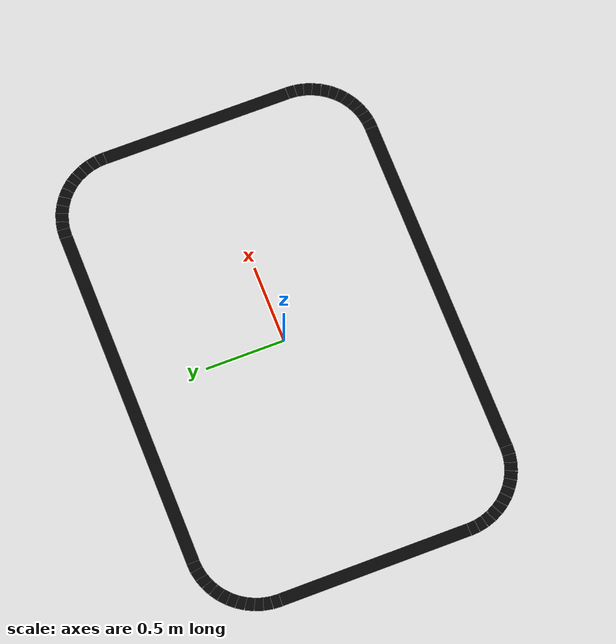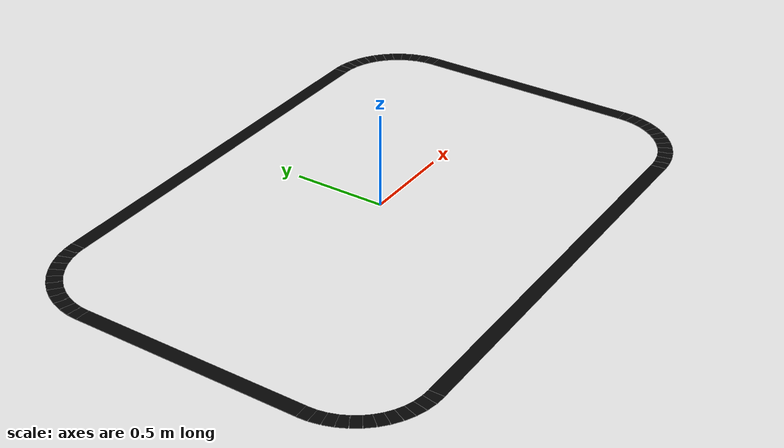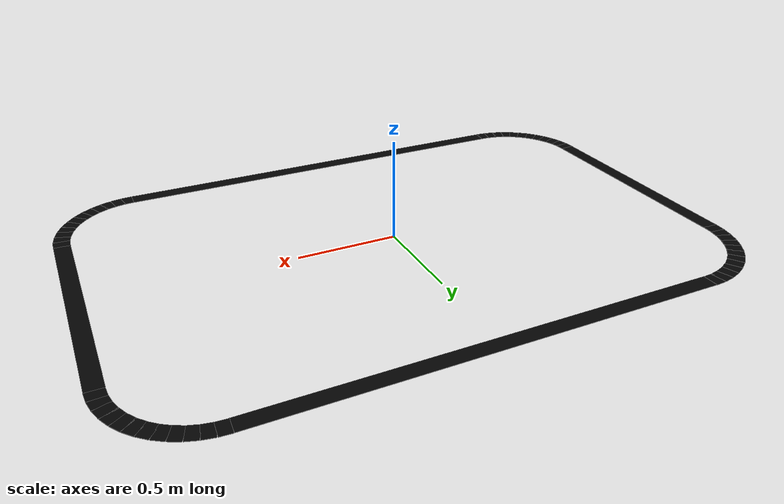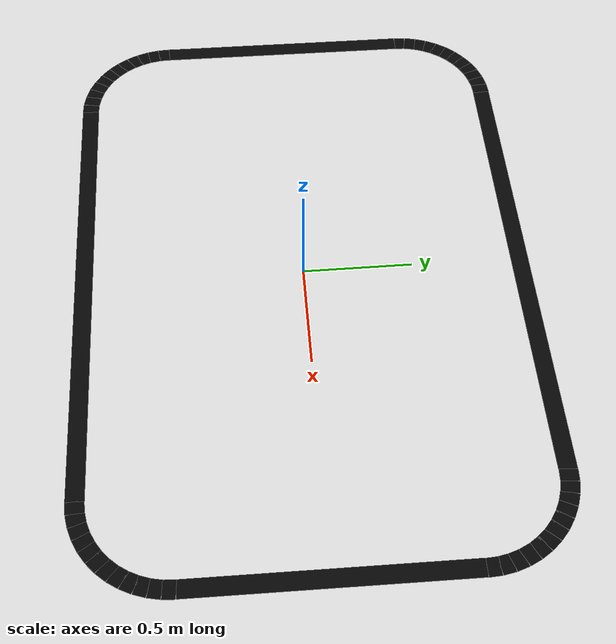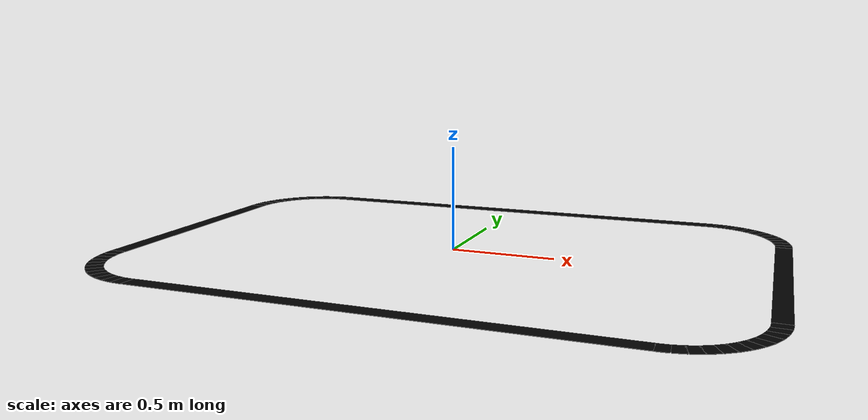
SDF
<?xml version="1.0"?>
<sdf version="1.8">
  <!-- Auto-generated by scripts/generate_line_track.py. Hand edits will be
       lost on regeneration; tune the constants at the top of the script
       and re-run instead. -->
  <model name="line_track">
    <static>true</static>
    <link name="track">
      <visual name='straight_top'>
        <pose>0.000000 1.000000 0.001000 0.000000 0.000000 0.000000</pose>
        <geometry>
          <box>
            <size>2.200000 0.080000 0.002000</size>
          </box>
        </geometry>
      <material>
        <ambient>0.02 0.02 0.02 1</ambient>
        <diffuse>0.02 0.02 0.02 1</diffuse>
        <specular>0.0 0.0 0.0 1</specular>
      </material>
      </visual>
      <visual name='straight_bottom'>
        <pose>0.000000 -1.000000 0.001000 0.000000 0.000000 0.000000</pose>
        <geometry>
          <box>
            <size>2.200000 0.080000 0.002000</size>
          </box>
        </geometry>
      <material>
        <ambient>0.02 0.02 0.02 1</ambient>
        <diffuse>0.02 0.02 0.02 1</diffuse>
        <specular>0.0 0.0 0.0 1</specular>
      </material>
      </visual>
      <visual name='straight_right'>
        <pose>1.500000 0.000000 0.001000 0.000000 0.000000 0.000000</pose>
        <geometry>
          <box>
            <size>0.080000 1.200000 0.002000</size>
          </box>
        </geometry>
      <material>
        <ambient>0.02 0.02 0.02 1</ambient>
        <diffuse>0.02 0.02 0.02 1</diffuse>
        <specular>0.0 0.0 0.0 1</specular>
      </material>
      </visual>
      <visual name='straight_left'>
        <pose>-1.500000 0.000000 0.001000 0.000000 0.000000 0.000000</pose>
        <geometry>
          <box>
            <size>0.080000 1.200000 0.002000</size>
          </box>
        </geometry>
      <material>
        <ambient>0.02 0.02 0.02 1</ambient>
        <diffuse>0.02 0.02 0.02 1</diffuse>
        <specular>0.0 0.0 0.0 1</specular>
      </material>
      </visual>
      <visual name='corner_tr_00'>
        <pose>1.499144 0.626161 0.001000 0.000000 0.000000 1.636246</pose>
        <geometry>
          <box>
            <size>0.054978 0.080000 0.002000</size>
          </box>
        </geometry>
      <material>
        <ambient>0.02 0.02 0.02 1</ambient>
        <diffuse>0.02 0.02 0.02 1</diffuse>
        <specular>0.0 0.0 0.0 1</specular>
      </material>
      </visual>
      <visual name='corner_tr_01'>
        <pose>1.492314 0.678036 0.001000 0.000000 0.000000 1.767146</pose>
        <geometry>
          <box>
            <size>0.054978 0.080000 0.002000</size>
          </box>
        </geometry>
      <material>
        <ambient>0.02 0.02 0.02 1</ambient>
        <diffuse>0.02 0.02 0.02 1</diffuse>
        <specular>0.0 0.0 0.0 1</specular>
      </material>
      </visual>
      <visual name='corner_tr_02'>
        <pose>1.478772 0.728576 0.001000 0.000000 0.000000 1.898046</pose>
        <geometry>
          <box>
            <size>0.054978 0.080000 0.002000</size>
          </box>
        </geometry>
      <material>
        <ambient>0.02 0.02 0.02 1</ambient>
        <diffuse>0.02 0.02 0.02 1</diffuse>
        <specular>0.0 0.0 0.0 1</specular>
      </material>
      </visual>
      <visual name='corner_tr_03'>
        <pose>1.458749 0.776915 0.001000 0.000000 0.000000 2.028945</pose>
        <geometry>
          <box>
            <size>0.054978 0.080000 0.002000</size>
          </box>
        </geometry>
      <material>
        <ambient>0.02 0.02 0.02 1</ambient>
        <diffuse>0.02 0.02 0.02 1</diffuse>
        <specular>0.0 0.0 0.0 1</specular>
      </material>
      </visual>
      <visual name='corner_tr_04'>
        <pose>1.432588 0.822228 0.001000 0.000000 0.000000 2.159845</pose>
        <geometry>
          <box>
            <size>0.054978 0.080000 0.002000</size>
          </box>
        </geometry>
      <material>
        <ambient>0.02 0.02 0.02 1</ambient>
        <diffuse>0.02 0.02 0.02 1</diffuse>
        <specular>0.0 0.0 0.0 1</specular>
      </material>
      </visual>
      <visual name='corner_tr_05'>
        <pose>1.400736 0.863738 0.001000 0.000000 0.000000 2.290745</pose>
        <geometry>
          <box>
            <size>0.054978 0.080000 0.002000</size>
          </box>
        </geometry>
      <material>
        <ambient>0.02 0.02 0.02 1</ambient>
        <diffuse>0.02 0.02 0.02 1</diffuse>
        <specular>0.0 0.0 0.0 1</specular>
      </material>
      </visual>
      <visual name='corner_tr_06'>
        <pose>1.363738 0.900736 0.001000 0.000000 0.000000 2.421644</pose>
        <geometry>
          <box>
            <size>0.054978 0.080000 0.002000</size>
          </box>
        </geometry>
      <material>
        <ambient>0.02 0.02 0.02 1</ambient>
        <diffuse>0.02 0.02 0.02 1</diffuse>
        <specular>0.0 0.0 0.0 1</specular>
      </material>
      </visual>
      <visual name='corner_tr_07'>
        <pose>1.322228 0.932588 0.001000 0.000000 0.000000 2.552544</pose>
        <geometry>
          <box>
            <size>0.054978 0.080000 0.002000</size>
          </box>
        </geometry>
      <material>
        <ambient>0.02 0.02 0.02 1</ambient>
        <diffuse>0.02 0.02 0.02 1</diffuse>
        <specular>0.0 0.0 0.0 1</specular>
      </material>
      </visual>
      <visual name='corner_tr_08'>
        <pose>1.276915 0.958749 0.001000 0.000000 0.000000 2.683444</pose>
        <geometry>
          <box>
            <size>0.054978 0.080000 0.002000</size>
          </box>
        </geometry>
      <material>
        <ambient>0.02 0.02 0.02 1</ambient>
        <diffuse>0.02 0.02 0.02 1</diffuse>
        <specular>0.0 0.0 0.0 1</specular>
      </material>
      </visual>
      <visual name='corner_tr_09'>
        <pose>1.228576 0.978772 0.001000 0.000000 0.000000 2.814343</pose>
        <geometry>
          <box>
            <size>0.054978 0.080000 0.002000</size>
          </box>
        </geometry>
      <material>
        <ambient>0.02 0.02 0.02 1</ambient>
        <diffuse>0.02 0.02 0.02 1</diffuse>
        <specular>0.0 0.0 0.0 1</specular>
      </material>
      </visual>
      <visual name='corner_tr_10'>
        <pose>1.178036 0.992314 0.001000 0.000000 0.000000 2.945243</pose>
        <geometry>
          <box>
            <size>0.054978 0.080000 0.002000</size>
          </box>
        </geometry>
      <material>
        <ambient>0.02 0.02 0.02 1</ambient>
        <diffuse>0.02 0.02 0.02 1</diffuse>
        <specular>0.0 0.0 0.0 1</specular>
      </material>
      </visual>
      <visual name='corner_tr_11'>
        <pose>1.126161 0.999144 0.001000 0.000000 0.000000 3.076143</pose>
        <geometry>
          <box>
            <size>0.054978 0.080000 0.002000</size>
          </box>
        </geometry>
      <material>
        <ambient>0.02 0.02 0.02 1</ambient>
        <diffuse>0.02 0.02 0.02 1</diffuse>
        <specular>0.0 0.0 0.0 1</specular>
      </material>
      </visual>
      <visual name='corner_tl_00'>
        <pose>-1.126161 0.999144 0.001000 0.000000 0.000000 3.207043</pose>
        <geometry>
          <box>
            <size>0.054978 0.080000 0.002000</size>
          </box>
        </geometry>
      <material>
        <ambient>0.02 0.02 0.02 1</ambient>
        <diffuse>0.02 0.02 0.02 1</diffuse>
        <specular>0.0 0.0 0.0 1</specular>
      </material>
      </visual>
      <visual name='corner_tl_01'>
        <pose>-1.178036 0.992314 0.001000 0.000000 0.000000 3.337942</pose>
        <geometry>
          <box>
            <size>0.054978 0.080000 0.002000</size>
          </box>
        </geometry>
      <material>
        <ambient>0.02 0.02 0.02 1</ambient>
        <diffuse>0.02 0.02 0.02 1</diffuse>
        <specular>0.0 0.0 0.0 1</specular>
      </material>
      </visual>
      <visual name='corner_tl_02'>
        <pose>-1.228576 0.978772 0.001000 0.000000 0.000000 3.468842</pose>
        <geometry>
          <box>
            <size>0.054978 0.080000 0.002000</size>
          </box>
        </geometry>
      <material>
        <ambient>0.02 0.02 0.02 1</ambient>
        <diffuse>0.02 0.02 0.02 1</diffuse>
        <specular>0.0 0.0 0.0 1</specular>
      </material>
      </visual>
      <visual name='corner_tl_03'>
        <pose>-1.276915 0.958749 0.001000 0.000000 0.000000 3.599742</pose>
        <geometry>
          <box>
            <size>0.054978 0.080000 0.002000</size>
          </box>
        </geometry>
      <material>
        <ambient>0.02 0.02 0.02 1</ambient>
        <diffuse>0.02 0.02 0.02 1</diffuse>
        <specular>0.0 0.0 0.0 1</specular>
      </material>
      </visual>
      <visual name='corner_tl_04'>
        <pose>-1.322228 0.932588 0.001000 0.000000 0.000000 3.730641</pose>
        <geometry>
          <box>
            <size>0.054978 0.080000 0.002000</size>
          </box>
        </geometry>
      <material>
        <ambient>0.02 0.02 0.02 1</ambient>
        <diffuse>0.02 0.02 0.02 1</diffuse>
        <specular>0.0 0.0 0.0 1</specular>
      </material>
      </visual>
      <visual name='corner_tl_05'>
        <pose>-1.363738 0.900736 0.001000 0.000000 0.000000 3.861541</pose>
        <geometry>
          <box>
            <size>0.054978 0.080000 0.002000</size>
          </box>
        </geometry>
      <material>
        <ambient>0.02 0.02 0.02 1</ambient>
        <diffuse>0.02 0.02 0.02 1</diffuse>
        <specular>0.0 0.0 0.0 1</specular>
      </material>
      </visual>
      <visual name='corner_tl_06'>
        <pose>-1.400736 0.863738 0.001000 0.000000 0.000000 3.992441</pose>
        <geometry>
          <box>
            <size>0.054978 0.080000 0.002000</size>
          </box>
        </geometry>
      <material>
        <ambient>0.02 0.02 0.02 1</ambient>
        <diffuse>0.02 0.02 0.02 1</diffuse>
        <specular>0.0 0.0 0.0 1</specular>
      </material>
      </visual>
      <visual name='corner_tl_07'>
        <pose>-1.432588 0.822228 0.001000 0.000000 0.000000 4.123340</pose>
        <geometry>
          <box>
            <size>0.054978 0.080000 0.002000</size>
          </box>
        </geometry>
      <material>
        <ambient>0.02 0.02 0.02 1</ambient>
        <diffuse>0.02 0.02 0.02 1</diffuse>
        <specular>0.0 0.0 0.0 1</specular>
      </material>
      </visual>
      <visual name='corner_tl_08'>
        <pose>-1.458749 0.776915 0.001000 0.000000 0.000000 4.254240</pose>
        <geometry>
          <box>
            <size>0.054978 0.080000 0.002000</size>
          </box>
        </geometry>
      <material>
        <ambient>0.02 0.02 0.02 1</ambient>
        <diffuse>0.02 0.02 0.02 1</diffuse>
        <specular>0.0 0.0 0.0 1</specular>
      </material>
      </visual>
      <visual name='corner_tl_09'>
        <pose>-1.478772 0.728576 0.001000 0.000000 0.000000 4.385140</pose>
        <geometry>
          <box>
            <size>0.054978 0.080000 0.002000</size>
          </box>
        </geometry>
      <material>
        <ambient>0.02 0.02 0.02 1</ambient>
        <diffuse>0.02 0.02 0.02 1</diffuse>
        <specular>0.0 0.0 0.0 1</specular>
      </material>
      </visual>
      <visual name='corner_tl_10'>
        <pose>-1.492314 0.678036 0.001000 0.000000 0.000000 4.516039</pose>
        <geometry>
          <box>
            <size>0.054978 0.080000 0.002000</size>
          </box>
        </geometry>
      <material>
        <ambient>0.02 0.02 0.02 1</ambient>
        <diffuse>0.02 0.02 0.02 1</diffuse>
        <specular>0.0 0.0 0.0 1</specular>
      </material>
      </visual>
      <visual name='corner_tl_11'>
        <pose>-1.499144 0.626161 0.001000 0.000000 0.000000 4.646939</pose>
        <geometry>
          <box>
            <size>0.054978 0.080000 0.002000</size>
          </box>
        </geometry>
      <material>
        <ambient>0.02 0.02 0.02 1</ambient>
        <diffuse>0.02 0.02 0.02 1</diffuse>
        <specular>0.0 0.0 0.0 1</specular>
      </material>
      </visual>
      <visual name='corner_bl_00'>
        <pose>-1.499144 -0.626161 0.001000 0.000000 0.000000 4.777839</pose>
        <geometry>
          <box>
            <size>0.054978 0.080000 0.002000</size>
          </box>
        </geometry>
      <material>
        <ambient>0.02 0.02 0.02 1</ambient>
        <diffuse>0.02 0.02 0.02 1</diffuse>
        <specular>0.0 0.0 0.0 1</specular>
      </material>
      </visual>
      <visual name='corner_bl_01'>
        <pose>-1.492314 -0.678036 0.001000 0.000000 0.000000 4.908739</pose>
        <geometry>
          <box>
            <size>0.054978 0.080000 0.002000</size>
          </box>
        </geometry>
      <material>
        <ambient>0.02 0.02 0.02 1</ambient>
        <diffuse>0.02 0.02 0.02 1</diffuse>
        <specular>0.0 0.0 0.0 1</specular>
      </material>
      </visual>
      <visual name='corner_bl_02'>
        <pose>-1.478772 -0.728576 0.001000 0.000000 0.000000 5.039638</pose>
        <geometry>
          <box>
            <size>0.054978 0.080000 0.002000</size>
          </box>
        </geometry>
      <material>
        <ambient>0.02 0.02 0.02 1</ambient>
        <diffuse>0.02 0.02 0.02 1</diffuse>
        <specular>0.0 0.0 0.0 1</specular>
      </material>
      </visual>
      <visual name='corner_bl_03'>
        <pose>-1.458749 -0.776915 0.001000 0.000000 0.000000 5.170538</pose>
        <geometry>
          <box>
            <size>0.054978 0.080000 0.002000</size>
          </box>
        </geometry>
      <material>
        <ambient>0.02 0.02 0.02 1</ambient>
        <diffuse>0.02 0.02 0.02 1</diffuse>
        <specular>0.0 0.0 0.0 1</specular>
      </material>
      </visual>
      <visual name='corner_bl_04'>
        <pose>-1.432588 -0.822228 0.001000 0.000000 0.000000 5.301438</pose>
        <geometry>
          <box>
            <size>0.054978 0.080000 0.002000</size>
          </box>
        </geometry>
      <material>
        <ambient>0.02 0.02 0.02 1</ambient>
        <diffuse>0.02 0.02 0.02 1</diffuse>
        <specular>0.0 0.0 0.0 1</specular>
      </material>
      </visual>
      <visual name='corner_bl_05'>
        <pose>-1.400736 -0.863738 0.001000 0.000000 0.000000 5.432337</pose>
        <geometry>
          <box>
            <size>0.054978 0.080000 0.002000</size>
          </box>
        </geometry>
      <material>
        <ambient>0.02 0.02 0.02 1</ambient>
        <diffuse>0.02 0.02 0.02 1</diffuse>
        <specular>0.0 0.0 0.0 1</specular>
      </material>
      </visual>
      <visual name='corner_bl_06'>
        <pose>-1.363738 -0.900736 0.001000 0.000000 0.000000 5.563237</pose>
        <geometry>
          <box>
            <size>0.054978 0.080000 0.002000</size>
          </box>
        </geometry>
      <material>
        <ambient>0.02 0.02 0.02 1</ambient>
        <diffuse>0.02 0.02 0.02 1</diffuse>
        <specular>0.0 0.0 0.0 1</specular>
      </material>
      </visual>
      <visual name='corner_bl_07'>
        <pose>-1.322228 -0.932588 0.001000 0.000000 0.000000 5.694137</pose>
        <geometry>
          <box>
            <size>0.054978 0.080000 0.002000</size>
          </box>
        </geometry>
      <material>
        <ambient>0.02 0.02 0.02 1</ambient>
        <diffuse>0.02 0.02 0.02 1</diffuse>
        <specular>0.0 0.0 0.0 1</specular>
      </material>
      </visual>
      <visual name='corner_bl_08'>
        <pose>-1.276915 -0.958749 0.001000 0.000000 0.000000 5.825036</pose>
        <geometry>
          <box>
            <size>0.054978 0.080000 0.002000</size>
          </box>
        </geometry>
      <material>
        <ambient>0.02 0.02 0.02 1</ambient>
        <diffuse>0.02 0.02 0.02 1</diffuse>
        <specular>0.0 0.0 0.0 1</specular>
      </material>
      </visual>
      <visual name='corner_bl_09'>
        <pose>-1.228576 -0.978772 0.001000 0.000000 0.000000 5.955936</pose>
        <geometry>
          <box>
            <size>0.054978 0.080000 0.002000</size>
          </box>
        </geometry>
      <material>
        <ambient>0.02 0.02 0.02 1</ambient>
        <diffuse>0.02 0.02 0.02 1</diffuse>
        <specular>0.0 0.0 0.0 1</specular>
      </material>
      </visual>
      <visual name='corner_bl_10'>
        <pose>-1.178036 -0.992314 0.001000 0.000000 0.000000 6.086836</pose>
        <geometry>
          <box>
            <size>0.054978 0.080000 0.002000</size>
          </box>
        </geometry>
      <material>
        <ambient>0.02 0.02 0.02 1</ambient>
        <diffuse>0.02 0.02 0.02 1</diffuse>
        <specular>0.0 0.0 0.0 1</specular>
      </material>
      </visual>
      <visual name='corner_bl_11'>
        <pose>-1.126161 -0.999144 0.001000 0.000000 0.000000 6.217735</pose>
        <geometry>
          <box>
            <size>0.054978 0.080000 0.002000</size>
          </box>
        </geometry>
      <material>
        <ambient>0.02 0.02 0.02 1</ambient>
        <diffuse>0.02 0.02 0.02 1</diffuse>
        <specular>0.0 0.0 0.0 1</specular>
      </material>
      </visual>
      <visual name='corner_br_00'>
        <pose>1.126161 -0.999144 0.001000 0.000000 0.000000 6.348635</pose>
        <geometry>
          <box>
            <size>0.054978 0.080000 0.002000</size>
          </box>
        </geometry>
      <material>
        <ambient>0.02 0.02 0.02 1</ambient>
        <diffuse>0.02 0.02 0.02 1</diffuse>
        <specular>0.0 0.0 0.0 1</specular>
      </material>
      </visual>
      <visual name='corner_br_01'>
        <pose>1.178036 -0.992314 0.001000 0.000000 0.000000 6.479535</pose>
        <geometry>
          <box>
            <size>0.054978 0.080000 0.002000</size>
          </box>
        </geometry>
      <material>
        <ambient>0.02 0.02 0.02 1</ambient>
        <diffuse>0.02 0.02 0.02 1</diffuse>
        <specular>0.0 0.0 0.0 1</specular>
      </material>
      </visual>
      <visual name='corner_br_02'>
        <pose>1.228576 -0.978772 0.001000 0.000000 0.000000 6.610435</pose>
        <geometry>
          <box>
            <size>0.054978 0.080000 0.002000</size>
          </box>
        </geometry>
      <material>
        <ambient>0.02 0.02 0.02 1</ambient>
        <diffuse>0.02 0.02 0.02 1</diffuse>
        <specular>0.0 0.0 0.0 1</specular>
      </material>
      </visual>
      <visual name='corner_br_03'>
        <pose>1.276915 -0.958749 0.001000 0.000000 0.000000 6.741334</pose>
        <geometry>
          <box>
            <size>0.054978 0.080000 0.002000</size>
          </box>
        </geometry>
      <material>
        <ambient>0.02 0.02 0.02 1</ambient>
        <diffuse>0.02 0.02 0.02 1</diffuse>
        <specular>0.0 0.0 0.0 1</specular>
      </material>
      </visual>
      <visual name='corner_br_04'>
        <pose>1.322228 -0.932588 0.001000 0.000000 0.000000 6.872234</pose>
        <geometry>
          <box>
            <size>0.054978 0.080000 0.002000</size>
          </box>
        </geometry>
      <material>
        <ambient>0.02 0.02 0.02 1</ambient>
        <diffuse>0.02 0.02 0.02 1</diffuse>
        <specular>0.0 0.0 0.0 1</specular>
      </material>
      </visual>
      <visual name='corner_br_05'>
        <pose>1.363738 -0.900736 0.001000 0.000000 0.000000 7.003134</pose>
        <geometry>
          <box>
            <size>0.054978 0.080000 0.002000</size>
          </box>
        </geometry>
      <material>
        <ambient>0.02 0.02 0.02 1</ambient>
        <diffuse>0.02 0.02 0.02 1</diffuse>
        <specular>0.0 0.0 0.0 1</specular>
      </material>
      </visual>
      <visual name='corner_br_06'>
        <pose>1.400736 -0.863738 0.001000 0.000000 0.000000 7.134033</pose>
        <geometry>
          <box>
            <size>0.054978 0.080000 0.002000</size>
          </box>
        </geometry>
      <material>
        <ambient>0.02 0.02 0.02 1</ambient>
        <diffuse>0.02 0.02 0.02 1</diffuse>
        <specular>0.0 0.0 0.0 1</specular>
      </material>
      </visual>
      <visual name='corner_br_07'>
        <pose>1.432588 -0.822228 0.001000 0.000000 0.000000 7.264933</pose>
        <geometry>
          <box>
            <size>0.054978 0.080000 0.002000</size>
          </box>
        </geometry>
      <material>
        <ambient>0.02 0.02 0.02 1</ambient>
        <diffuse>0.02 0.02 0.02 1</diffuse>
        <specular>0.0 0.0 0.0 1</specular>
      </material>
      </visual>
      <visual name='corner_br_08'>
        <pose>1.458749 -0.776915 0.001000 0.000000 0.000000 7.395833</pose>
        <geometry>
          <box>
            <size>0.054978 0.080000 0.002000</size>
          </box>
        </geometry>
      <material>
        <ambient>0.02 0.02 0.02 1</ambient>
        <diffuse>0.02 0.02 0.02 1</diffuse>
        <specular>0.0 0.0 0.0 1</specular>
      </material>
      </visual>
      <visual name='corner_br_09'>
        <pose>1.478772 -0.728576 0.001000 0.000000 0.000000 7.526732</pose>
        <geometry>
          <box>
            <size>0.054978 0.080000 0.002000</size>
          </box>
        </geometry>
      <material>
        <ambient>0.02 0.02 0.02 1</ambient>
        <diffuse>0.02 0.02 0.02 1</diffuse>
        <specular>0.0 0.0 0.0 1</specular>
      </material>
      </visual>
      <visual name='corner_br_10'>
        <pose>1.492314 -0.678036 0.001000 0.000000 0.000000 7.657632</pose>
        <geometry>
          <box>
            <size>0.054978 0.080000 0.002000</size>
          </box>
        </geometry>
      <material>
        <ambient>0.02 0.02 0.02 1</ambient>
        <diffuse>0.02 0.02 0.02 1</diffuse>
        <specular>0.0 0.0 0.0 1</specular>
      </material>
      </visual>
      <visual name='corner_br_11'>
        <pose>1.499144 -0.626161 0.001000 0.000000 0.000000 7.788532</pose>
        <geometry>
          <box>
            <size>0.054978 0.080000 0.002000</size>
          </box>
        </geometry>
      <material>
        <ambient>0.02 0.02 0.02 1</ambient>
        <diffuse>0.02 0.02 0.02 1</diffuse>
        <specular>0.0 0.0 0.0 1</specular>
      </material>
      </visual>
    </link>
  </model>
</sdf>
